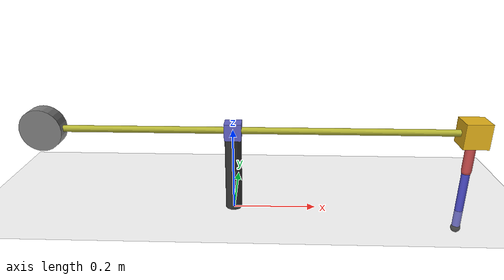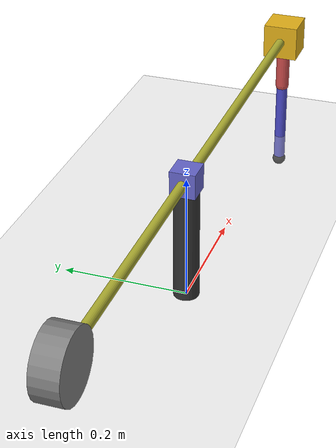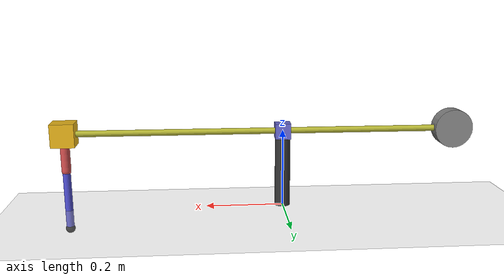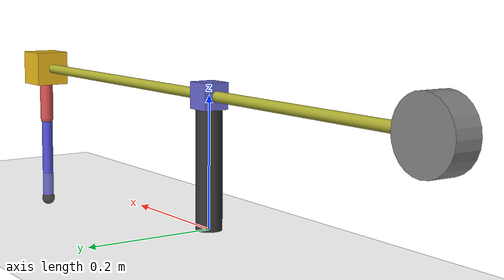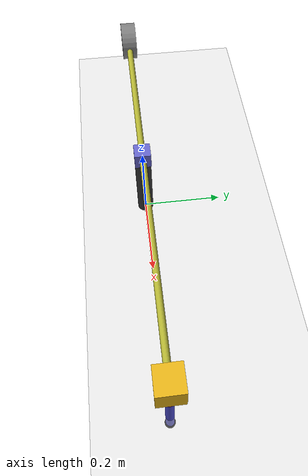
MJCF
<mujoco model="hoppy">
  <compiler angle="radian" autolimits="true"/>
  <option timestep="0.001" integrator="implicitfast" gravity="0 0 -9.81"/>
  <default>
    <joint damping="0"/>
    <geom contype="0" conaffinity="0"/>
    <default class="contact">
      <geom contype="1" conaffinity="1" solref="0.002 1" solimp="0.95 0.99 0.001"
            friction="2.0 0.1 0.1"/>
    </default>
  </default>
  <worldbody>
    <light pos="0 0 2" dir="0 0 -1"/>
    <geom name="floor" class="contact" type="plane" size="3 3 0.1" rgba="0.8 0.8 0.8 1"/>
    <geom name="post" type="cylinder" fromto="0 0 0 0 0 0.2" size="0.02" rgba="0.2 0.2 0.2 1"/>
    <body name="link1" pos="0 0 0.2">
      <joint name="theta1" type="hinge" axis="0 0 1"/>
      <inertial pos="0 0 0" mass="0.268" diaginertia="0.00115952 0.00104649 0.00030518"/>
      <geom type="box" size="0.02 0.02 0.02" rgba="0.4 0.4 0.8 1"/>
      <body name="link2" pos="0 0 0">
        <joint name="theta2" type="hinge" axis="0 1 0"/>
        <inertial pos="-0.25 0 0" mass="0.15" diaginertia="0.002 0.05 0.05"/>
        <geom type="cylinder" fromto="-0.45 0 0 0.556 0 0" size="0.008" rgba="0.7 0.7 0.2 1"/>
        <body name="cuerpo_cadera" pos="0.556 0 0">
          <inertial pos="0 0 0" mass="1.2" diaginertia="0.002 0.002 0.002"/>
          <geom type="box" size="0.03 0.03 0.03" rgba="0.9 0.7 0.1 1"/>
        </body>
        <body name="contrapeso" pos="-0.45 0 0">
          <inertial pos="0 0 0" mass="2.1" diaginertia="0.003 0.003 0.003"/>
          <geom type="cylinder" fromto="0 -0.02 0 0 0.02 0" size="0.05" rgba="0.5 0.5 0.5 1"/>
        </body>
        <body name="link3" pos="0.556 0 0">
          <joint name="theta3" type="hinge" axis="0 1 0" armature="0.005065269999999999"/>
          <inertial pos="0.048 0 0.077" mass="0.656" diaginertia="0.0008211 0.00235762 0.0016834"/>
          <geom type="capsule" fromto="0 0 0 0 0 -0.096" size="0.012" rgba="0.8 0.3 0.3 1"/>
          <body name="link4" pos="0 0 -0.096">
            <joint name="theta4" type="hinge" axis="0 1 0" armature="0.00580608"
                   stiffness="3.0" springref="-1.5708"/>
            <inertial pos="0.002 0.021 0.145" mass="0.149" diaginertia="0.00039424 0.00032191 0.00010442"/>
            <geom type="capsule" fromto="0 0 0 0 0 -0.1545" size="0.010" rgba="0.3 0.3 0.8 1"/>
            <geom name="foot" class="contact" type="sphere" pos="0 0 -0.1545" size="0.012" rgba="0.1 0.1 0.1 1"/>
            <site name="foot_site" pos="0 0 -0.1545" size="0.005"/>
          </body>
        </body>
      </body>
    </body>
  </worldbody>
  <actuator>
    <motor name="hip"  joint="theta3" gear="1" ctrlrange="-100 100"/>
    <motor name="knee" joint="theta4" gear="1" ctrlrange="-100 100"/>
  </actuator>
  <sensor>
    <framepos name="foot_pos" objtype="site" objname="foot_site"/>
    <touch name="foot_touch" site="foot_site"/>
  </sensor>
</mujoco>
